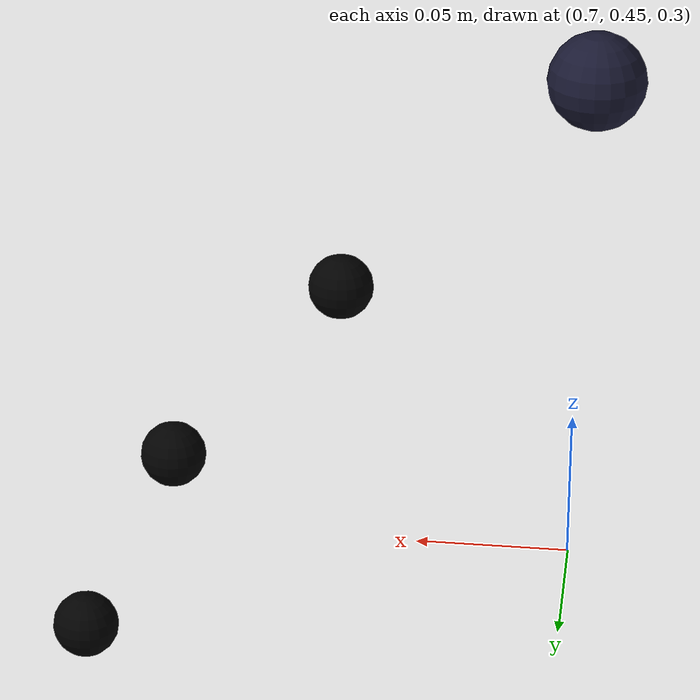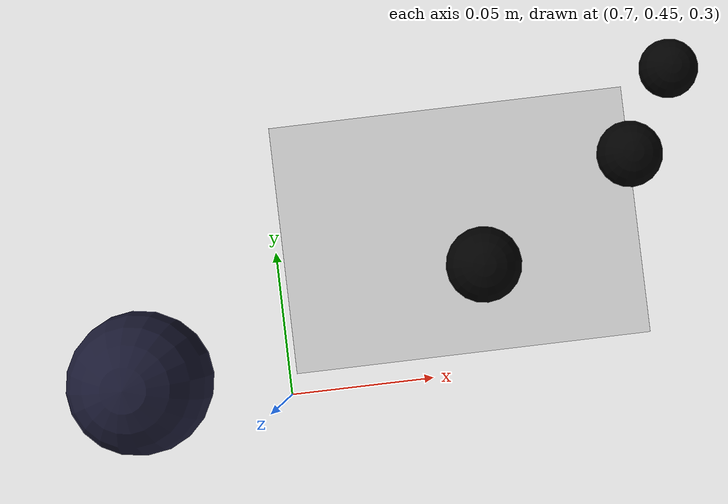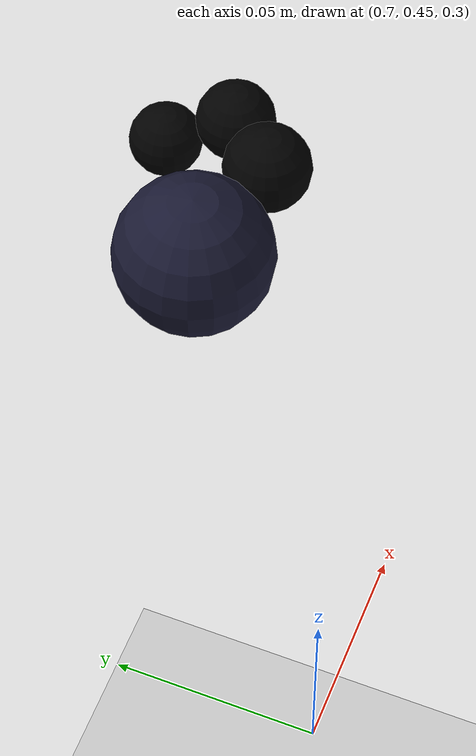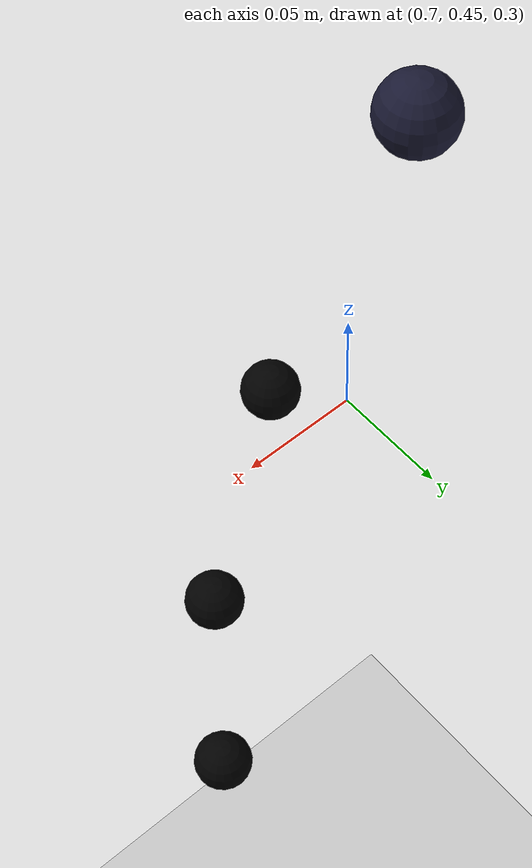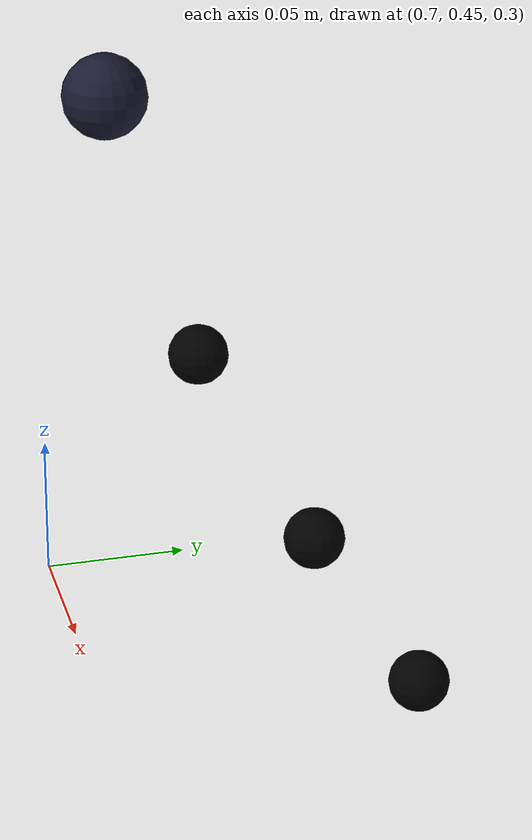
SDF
<?xml version="1.0" ?>
<sdf version="1.4">
  <!-- We use a custom world for the iiwa so that the camera angle is launched correctly. -->
  <!-- One can change this world to his needs or use another one. -->

  <world name="default">

    <include>
      <uri>model://ground_plane</uri>
    </include>

    <!-- Global light source -->
    <include>
      <uri>model://sun</uri>
    </include>

    <physics name="default_physics" default="0" type="ode">
      <max_step_size>0.01</max_step_size>
      <real_time_factor>1</real_time_factor>
      <real_time_update_rate>100</real_time_update_rate>
      <ode>
        <solver>
          <type>quick</type>
          <iters>50</iters>
          <sor>1.0</sor> <!-- Important, see issue #2209 -->
          <use_dynamic_moi_rescaling>false</use_dynamic_moi_rescaling>
        </solver>
      </ode>
    </physics>

    <!-- Focus camera -->
    <gui fullscreen='0'>
      <camera name='user_camera'>
	<pose>4.927360 -4.376610 3.740080 0.000000 0.275643 2.356190</pose>
	<view_controller>orbit</view_controller>
      </camera>
    </gui>

    <model name="sphere">
      <pose>0.695342 0.475406 0.477245 0 0 0</pose>
      <static>true</static>
      <link name="link">
        <visual name="visual">
          <geometry>
            <sphere>
              <radius>0.015</radius>
            </sphere>
          </geometry>
          <material>
            <ambient>0.1 0.1 0.1 1</ambient>
            <diffuse>0.1 0.1 0.2 1</diffuse>
            <specular>0 0 0 0</specular>
            <emissive>0 0 0 1</emissive>
          </material>
        </visual>
      </link>
    </model>

    <model name="sphere1">
      <pose>0.84125267 0.54598384 0.32084772 0 0 0</pose>
      <static>true</static>
      <link name="link">
        <visual name="visual">
          <geometry>
            <sphere>
              <radius>0.01</radius>
            </sphere>
          </geometry>
          <material>
            <ambient>0 0 0 1</ambient>
            <diffuse>0 0 0 1</diffuse>
            <specular>0 0 0 0</specular>
            <emissive>0 1 0 1</emissive>
          </material>
        </visual>
      </link>
    </model>

    <model name="sphere2">
      <pose>0.77009919 0.48992327 0.41213478 0 0 0</pose>
      <static>true</static>
      <link name="link">
        <visual name="visual">
          <geometry>
            <sphere>
              <radius>0.01</radius>
            </sphere>
          </geometry>
          <material>
            <ambient>0 0 0 1</ambient>
            <diffuse>0 0 0 1</diffuse>
            <specular>0 0 0 0</specular>
            <emissive>0 1 0 1</emissive>
          </material>
        </visual>
      </link>
    </model>

    <model name="sphere3">
      <pose>0.81827572 0.51660256 0.36534679 0 0 0</pose>
      <static>true</static>
      <link name="link">
        <visual name="visual">
          <geometry>
            <sphere>
              <radius>0.01</radius>
            </sphere>
          </geometry>
          <material>
            <ambient>0 0 0 1</ambient>
            <diffuse>0 0 0 1</diffuse>
            <specular>0 0 0 0</specular>
            <emissive>0 1 0 1</emissive>
          </material>
        </visual>
      </link>
    </model>

  </world>

</sdf>
